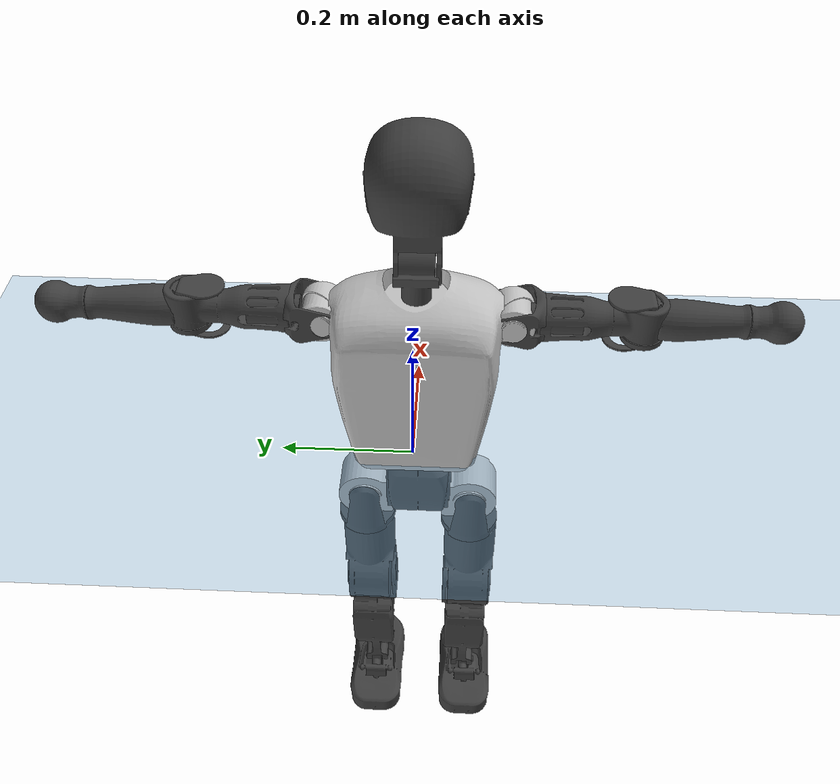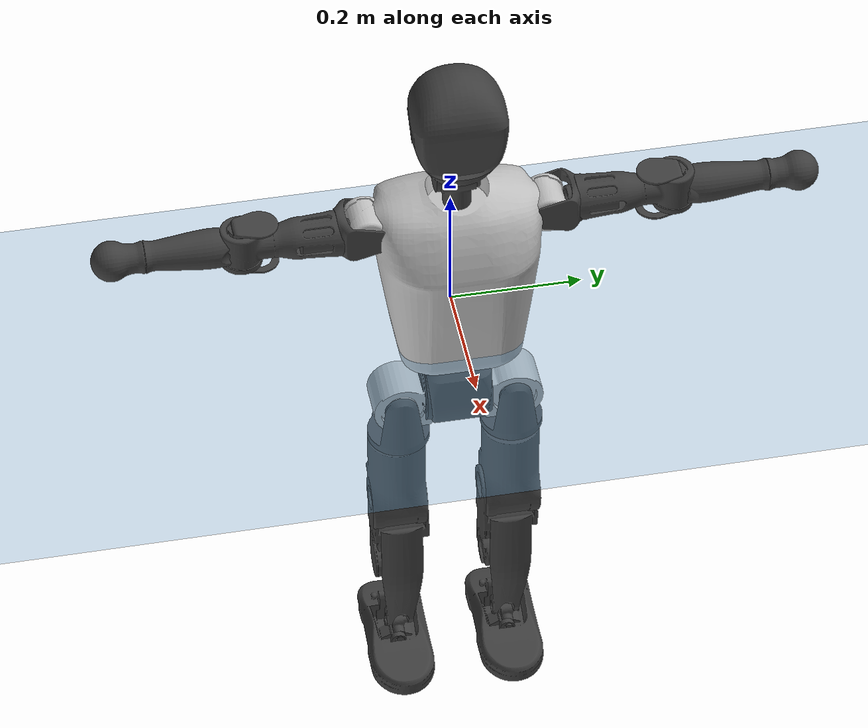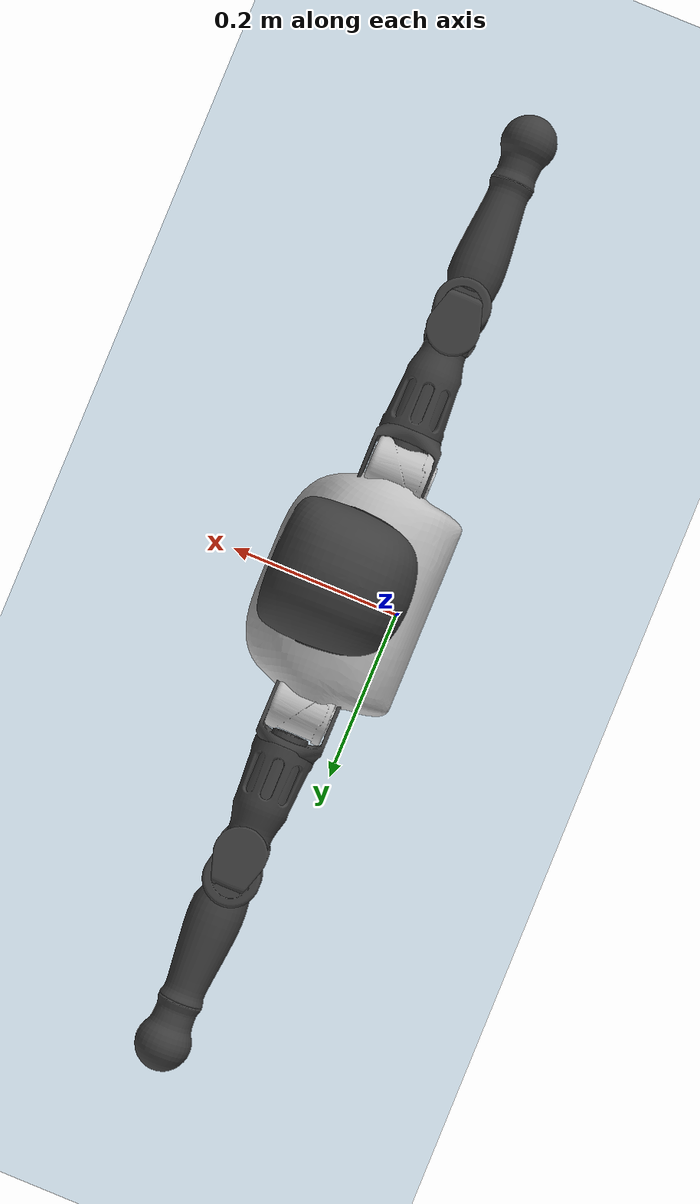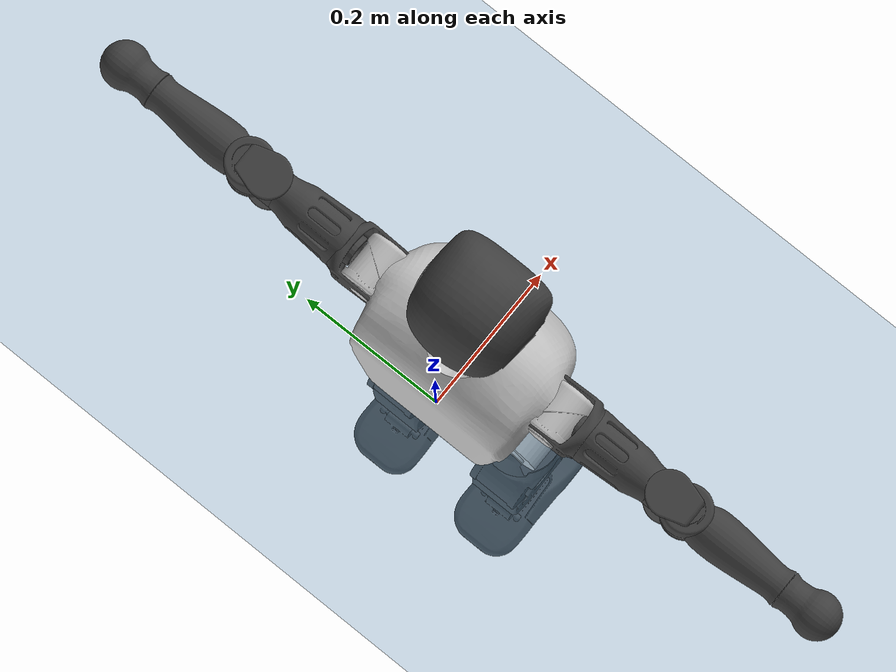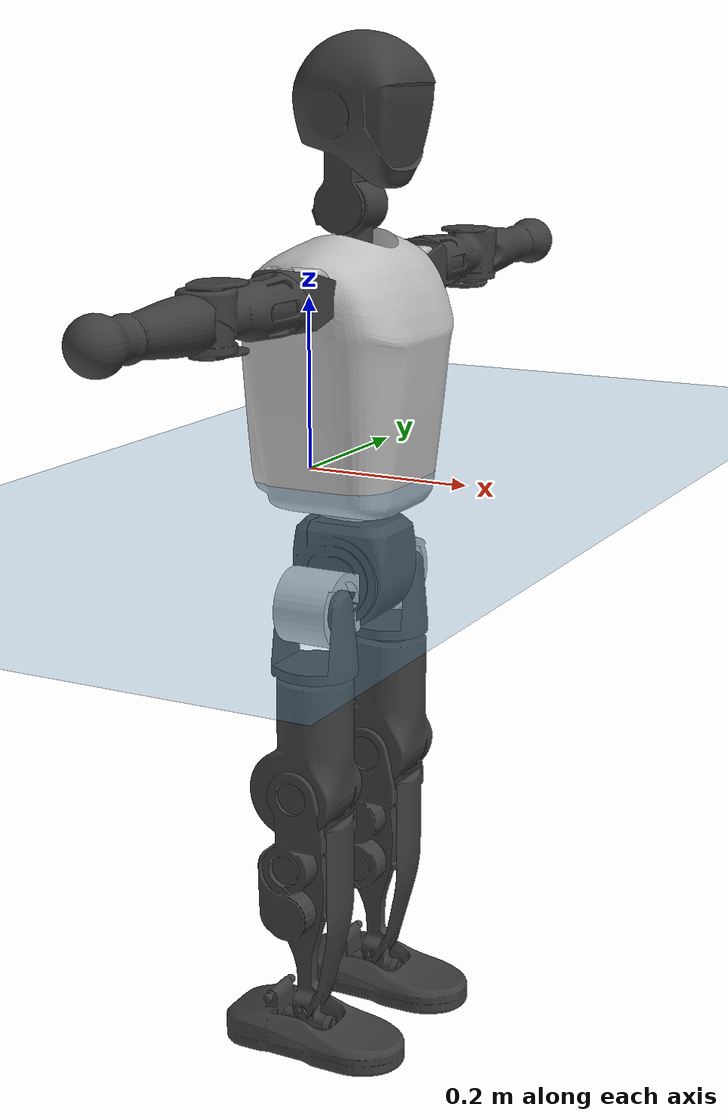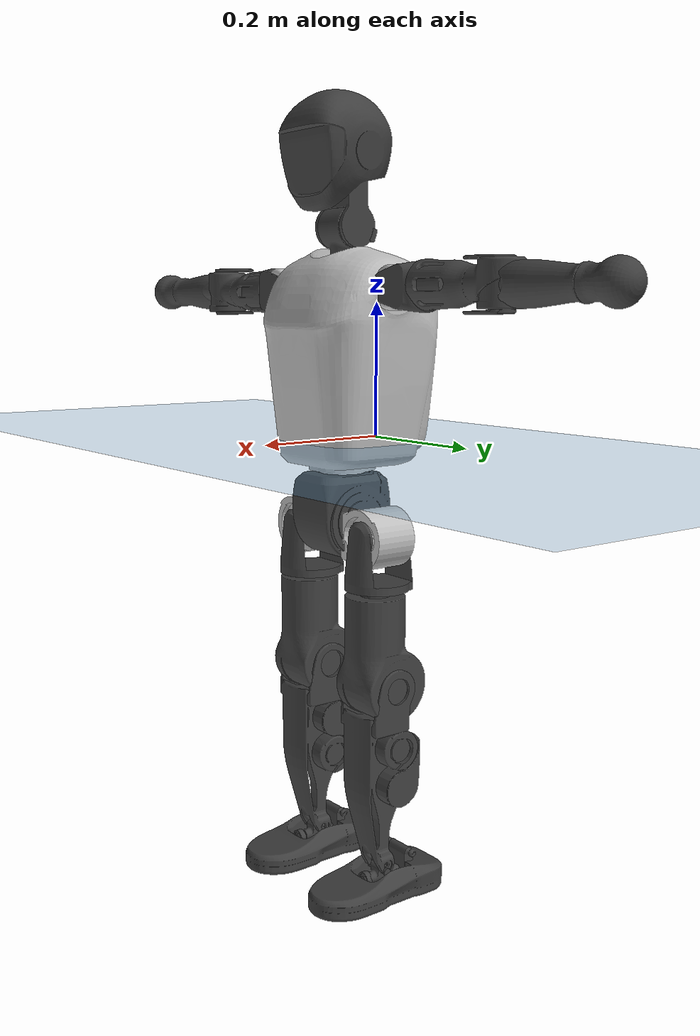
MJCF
<mujoco model="T1">
  <compiler angle="radian" assetdir="assets" balanceinertia="true" inertiafromgeom="false"/>

  <option timestep="0.005" density="1.2" viscosity="2e-05"/>

  <size nkey="1"/>

  <visual>
    <quality shadowsize="8192"/>
    <map shadowclip="0.5"/>
  </visual>

  <default>
    <default class="/">
      <joint armature="0.01" damping="0.01" frictionloss="0.1"/>
      <geom contype="0" conaffinity="0" group="1" solref="-1000 -80"/>
      <site size="0.01 0.005 0.005" group="5"/>
      <general forcelimited="true" biastype="affine" gainprm="25" biasprm="0 -25 -0.6"/>
      <default class="t1">
        <geom rgba="0.25 0.25 0.25 1"/>
        <default class="visual">
          <geom type="mesh" group="2"/>
        </default>
        <default class="collision">
          <geom group="3"/>
        </default>
        <default class="foot">
          <geom size="0.1115 0.05 0.015" type="box" condim="6" group="4" priority="1" solimp="0.015 1 0.015"/>
        </default>
        <default class="reward_collision_sphere">
          <geom group="5" rgba="1 0 0 1"/>
        </default>
      </default>
    </default>
  </default>

  <asset>
    <texture type="skybox" colorspace="auto" name="//unnamed_texture_0" builtin="gradient" rgb1="0.95 0.95 0.95" rgb2="0.95 0.95 0.95" width="100" height="600"/>
    <texture type="2d" colorspace="auto" name="texplane" builtin="checker" rgb1="0.345 0.575 0.748" rgb2="0.345 0.575 0.748" markrgb="1 1 1" width="512" height="512"/>
    <material name="MatPlane" class="/" texture="texplane" texuniform="true" texrepeat="2 2" specular="0.9"/>
    <mesh name="Trunk" class="/" file="Trunk.stl"/>
    <mesh name="H1" class="/" file="H1.stl"/>
    <mesh name="H2" class="/" file="H2.stl"/>
    <mesh name="AL1" class="/" file="AL1.stl"/>
    <mesh name="AL2" class="/" file="AL2.stl"/>
    <mesh name="AL3" class="/" file="AL3.stl"/>
    <mesh name="left_hand_link" class="/" file="left_hand_link.stl"/>
    <mesh name="AR1" class="/" file="AR1.stl"/>
    <mesh name="AR2" class="/" file="AR2.stl"/>
    <mesh name="AR3" class="/" file="AR3.stl"/>
    <mesh name="right_hand_link" class="/" file="right_hand_link.stl"/>
    <mesh name="Waist" class="/" file="Waist.stl"/>
    <mesh name="Hip_Pitch_Left" class="/" file="Hip_Pitch_Left.stl"/>
    <mesh name="Hip_Roll_Left" class="/" file="Hip_Roll_Left.stl"/>
    <mesh name="Hip_Yaw_Left" class="/" file="Hip_Yaw_Left.stl"/>
    <mesh name="Shank_Left" class="/" file="Shank_Left.stl"/>
    <mesh name="Ankle_Cross_Left" class="/" file="Ankle_Cross_Left.stl"/>
    <mesh name="left_foot_link" class="/" file="left_foot_link.stl"/>
    <mesh name="Hip_Pitch_Right" class="/" file="Hip_Pitch_Right.stl"/>
    <mesh name="Hip_Roll_Right" class="/" file="Hip_Roll_Right.stl"/>
    <mesh name="Hip_Yaw_Right" class="/" file="Hip_Yaw_Right.stl"/>
    <mesh name="Shank_Right" class="/" file="Shank_Right.stl"/>
    <mesh name="Ankle_Cross_Right" class="/" file="Ankle_Cross_Right.stl"/>
    <mesh name="right_foot_link" class="/" file="right_foot_link.stl"/>
  </asset>

  <worldbody>
    <geom name="floor" class="/" size="100 100 0.125" type="plane" group="0" material="MatPlane"/>
    <light name="toplight_shadow" class="/" pos="0 0 5" dir="0.0990148 0.0990148 -0.990148" type="directional" ambient="0.04 0.04 0.04" diffuse="0.55 0.55 0.55" specular="0.12 0.12 0.12"/>
    <light name="toplight_fill" class="/" pos="0 0 5" dir="0.0990148 0.0990148 -0.990148" type="directional" castshadow="false" ambient="0.04 0.04 0.04" diffuse="0.3 0.3 0.3" specular="0.08 0.08 0.08"/>
    <body name="trunk" childclass="t1" pos="0.000113864 -0.00201105 -0.000698432" quat="0.999999 -0.000637451 0.00121361 0.000282926">
      <inertial pos="0.0528721 -0.00173032 0.10654" quat="0.99992 -0.00767307 -0.00244818 -0.00975777" mass="9.59936" diaginertia="0.0886876 0.0278633 0.0620681"/>
      <joint name="//unnamed_joint_0" type="free" armature="0" damping="0" frictionloss="0"/>
      <geom name="//unnamed_geom_1" class="visual" rgba="0.76 0.76 0.76 1" mesh="Trunk"/>
      <geom name="//unnamed_geom_2" class="collision" size="0.0705119 0.0940158 0.141024" pos="0.0590371 0 0.122177" type="box"/>
      <geom name="//unnamed_geom_3" class="reward_collision_sphere" size="0.108118" pos="0.0590371 0 0.101814"/>
      <geom name="//unnamed_geom_4" class="reward_collision_sphere" size="0.0141024" pos="0.0590371 0.0695624 0"/>
      <geom name="//unnamed_geom_5" class="reward_collision_sphere" size="0.0141024" pos="0.0590371 -0.0695624 0"/>
      <geom name="//unnamed_geom_6" class="reward_collision_sphere" size="0.0141024" pos="0.0590371 0.0875668 0.183265"/>
      <geom name="//unnamed_geom_7" class="reward_collision_sphere" size="0.0141024" pos="0.0590371 -0.0875668 0.183265"/>
      <site name="imu" pos="0.013828 -0.000483274 -0.0137099" size="0.00940158"/>
      <camera name="track" pos="0 -1.63676 0" quat="0.707107 0.707107 0 0" mode="trackcom"/>
      <camera name="ego_camera" pos="0.120042 0 0.427619" quat="-0.5 -0.5 0.5 0.5"/>
      <body name="H1" pos="0.0579852 -0.000115893 0.245053" quat="1 -0.000152054 -4.55085e-06 8.94622e-06">
        <inertial pos="-0.00184653 -0.00057335 0.0584336" quat="0.765367 -0.0131291 0.000638639 0.64346" mass="0.364172" diaginertia="0.000216101 8.22713e-05 0.00016293"/>
        <joint name="AAHead_yaw" pos="0 0 0" axis="-0.00267322 0.00307015 0.999992" stiffness="0.00698687" range="-1.5128 1.56511" armature="0.010545" damping="0.00542491" frictionloss="0.106225"/>
        <geom name="//unnamed_geom_8" class="visual" mesh="H1"/>
        <body name="H2" pos="-0.0027032 -0.00186319 0.0630889" quat="1 0.000168949 0.000131264 0.000581769">
          <inertial pos="0.0096756 -0.00227661 0.0983561" quat="0.990339 0.0997426 -0.0638865 -0.0720957" mass="0.530921" diaginertia="0.0018384 0.000683356 0.00188037"/>
          <joint name="Head_pitch" pos="0 0 0" axis="0.0011673 -0.999999 -0.00118769" range="-1.23673 0.355412" armature="0.0105985" damping="0" frictionloss="0.0889586"/>
          <geom name="//unnamed_geom_9" class="visual" mesh="H2"/>
          <geom name="//unnamed_geom_10" class="collision" size="0.0752127" pos="0.00983952 0 0.111995"/>
          <geom name="//unnamed_geom_11" class="reward_collision_sphere" size="0.0846142" pos="0.019679 0 0.101814"/>
        </body>
      </body>
      <body name="AL1" pos="0.0569635 0.0865761 0.220647" quat="0.999999 0.000837852 0.000478387 -0.000843915">
        <inertial pos="-0.00373941 0.0358181 0.00055123" quat="0.504193 0.495765 -0.504314 0.495656" mass="0.429523" diaginertia="0.0012248 0.000449085 0.000301012"/>
        <joint name="Left_Shoulder_Pitch" pos="0 0 0" axis="0.0105313 0.999855 0.0133606" range="-3.34976 1.26759" armature="0.00959957" damping="0" frictionloss="0.103869"/>
        <geom name="//unnamed_geom_12" class="visual" rgba="0.76 0.76 0.76 1" mesh="AL1"/>
        <body name="AL2" pos="-0.00139929 0.0404236 0.000611881" quat="1 -1.14446e-05 0.000394789 -0.000312409">
          <inertial pos="0.00253667 0.0336386 -0.00219481" quat="0.485397 0.512748 -0.48581 0.515237" mass="0.13873" diaginertia="0.00038166 0.000129712 0.000193727"/>
          <joint name="Left_Shoulder_Roll" pos="0 0 0" axis="-0.999997 -0.00129887 0.00223345" range="-1.53502 1.73606" armature="0.0105677" damping="0.0049312" frictionloss="0.0932914"/>
          <geom name="//unnamed_geom_13" class="visual" mesh="AL2"/>
          <body name="AL3" pos="0.00157024 0.0492231 0.00223017" quat="1 -0.000182772 -2.6243e-05 7.01382e-05">
            <inertial pos="0.00229361 0.0674146 0.000436519" quat="0.70283 0.711284 -0.00651088 0.00787238" mass="0.792475" diaginertia="0.0118515 0.00453086 0.000632362"/>
            <joint name="Left_Elbow_Pitch" pos="0 0 0" axis="-0.00546806 -0.999954 0.00793178" range="-2.3178 2.24296" armature="0.0101717" damping="0.0153593" frictionloss="0.0939673"/>
            <geom name="//unnamed_geom_14" class="visual" mesh="AL3"/>
            <geom name="//unnamed_geom_15" class="collision" size="0.0282047 0.0705119" pos="0 0.0409191 0" quat="0.707105 0.707108 0 0" type="cylinder"/>
            <geom name="//unnamed_geom_16" class="reward_collision_sphere" size="0.0338457"/>
            <body name="left_hand_link" pos="0.000904652 0.119736 -0.00194918" quat="0.999999 0.000459736 0.00103759 -1.66021e-05">
              <inertial pos="-0.00231668 0.0913083 0.000364418" quat="0.707686 0.706526 0.00105287 0.000706256" mass="0.271047" diaginertia="0.00730036 0.00304701 0.000243876"/>
              <joint name="Left_Elbow_Yaw" pos="0 0 0" axis="-0.000827828 -0.00427043 0.999991" range="-2.44011 -0.0380727" armature="0.00990572" damping="0.020439" frictionloss="0.0958839"/>
              <geom name="//unnamed_geom_17" class="visual" mesh="left_hand_link"/>
              <geom name="//unnamed_geom_18" class="collision" size="0.0282047 0.0822638" pos="0 0.10639 0" quat="0.707105 0.707108 0 0" type="cylinder"/>
              <geom name="//unnamed_geom_19" class="reward_collision_sphere" size="0.0470079"/>
              <geom name="//unnamed_geom_20" class="reward_collision_sphere" size="0.0329055" pos="0 0.090022 0"/>
              <geom name="//unnamed_geom_21" class="reward_collision_sphere" size="0.0329055" pos="0 0.175952 0"/>
            </body>
          </body>
        </body>
      </body>
      <body name="AR1" pos="0.0572082 -0.088644 0.221464" quat="1 -5.37578e-05 0.000477941 -0.000468004">
        <inertial pos="-0.00323793 -0.0387184 0.000306604" quat="0.5047 0.487268 -0.503086 0.504729" mass="0.427372" diaginertia="0.00118893 0.000461217 0.000314033"/>
        <joint name="Right_Shoulder_Pitch" pos="0 0 0" axis="0.0165055 -0.999863 -0.00144817" range="-1.21709 3.2677" armature="0.0106725" damping="0.00487871" frictionloss="0.085462"/>
        <geom name="//unnamed_geom_22" class="visual" rgba="0.76 0.76 0.76 1" mesh="AR1"/>
        <body name="AR2" pos="0.00179403 -0.0346417 -0.00235759" quat="0.999999 -0.00108615 -0.000840329 0.000276137">
          <inertial pos="0.00134539 -0.0317894 0.000288315" quat="0.51667 0.486646 -0.513574 0.482151" mass="0.128533" diaginertia="0.00036879 0.000130732 0.000194103"/>
          <joint name="Right_Shoulder_Roll" pos="0 0 0" axis="-0.99998 0.00194683 -0.00596105" stiffness="0.00223089" range="-1.71862 1.58767" armature="0.00948907" damping="0.0121499" frictionloss="0.102307"/>
          <geom name="//unnamed_geom_23" class="visual" mesh="AR2"/>
          <body name="AR3" pos="0.00217121 -0.0491505 -0.00163783" quat="1 -6.68288e-06 -4.73583e-06 9.53838e-06">
            <inertial pos="-0.000875864 -0.0725223 -0.00109314" quat="0.701556 0.712537 0.0102851 -0.00186231" mass="0.852253" diaginertia="0.0118959 0.00473558 0.000705017"/>
            <joint name="Right_Elbow_Pitch" pos="0 0 0" axis="-0.0118486 0.999916 0.00530549" stiffness="0.00278954" range="-2.32344 2.22157" armature="0.00807713" damping="0.00522838" frictionloss="0.106305"/>
            <geom name="//unnamed_geom_24" class="visual" mesh="AR3"/>
            <geom name="//unnamed_geom_25" class="collision" size="0.0282047 0.0705119" pos="0 -0.0409191 0" quat="0.707105 0.707108 0 0" type="cylinder"/>
            <geom name="//unnamed_geom_26" class="reward_collision_sphere" size="0.0338457"/>
            <body name="right_hand_link" pos="-0.000139711 -0.120205 0.000721002" quat="0.999999 -0.000445746 0.000459212 0.00119715">
              <inertial pos="-0.00115362 -0.0915095 0.00340916" quat="0.706496 0.707716 0.000216954 0.000321329" mass="0.26873" diaginertia="0.00743968 0.00288942 0.000229264"/>
              <joint name="Right_Elbow_Yaw" pos="0 0 0" axis="-0.00253448 0.00882574 0.999958" range="0.0080462 2.4929" armature="0.0107949" damping="0" frictionloss="0.107116"/>
              <geom name="//unnamed_geom_27" class="visual" mesh="right_hand_link"/>
              <geom name="//unnamed_geom_28" class="collision" size="0.0282047 0.0822638" pos="0 -0.10639 0" quat="0.707105 0.707108 0 0" type="cylinder"/>
              <geom name="//unnamed_geom_29" class="reward_collision_sphere" size="0.0470079"/>
              <geom name="//unnamed_geom_30" class="reward_collision_sphere" size="0.0329055" pos="0 -0.090022 0"/>
              <geom name="//unnamed_geom_31" class="reward_collision_sphere" size="0.0329055" pos="0 -0.175952 0"/>
            </body>
          </body>
        </body>
      </body>
      <body name="Waist" pos="0.0619213 -0.00424013 -0.11523" quat="1 -2.49422e-05 -0.00023573 -0.000597663">
        <inertial pos="-5.15969e-05 -0.000349143 0.00653481" quat="0.98168 0.0027114 -0.190199 0.011023" mass="2.09626" diaginertia="0.00477383 0.00192053 0.00505059"/>
        <joint name="Waist" pos="0 0 0" axis="0.00582142 0.0111231 0.999921" range="-1.5875 1.51713" armature="0.00934903" damping="0.0208843" frictionloss="0.106834"/>
        <geom name="//unnamed_geom_32" class="visual" mesh="Waist"/>
        <body name="Hip_Pitch_Left" pos="0.000334059 0.0872922 0.000175636" quat="1 -0.000163222 -0.000659005 -0.000149509">
          <inertial pos="0.00119784 -0.00844129 -0.0180064" quat="0.975465 0.219768 0.0130348 0.000412258" mass="0.858811" diaginertia="0.00165652 0.000547193 0.00138467"/>
          <joint name="Left_Hip_Pitch" pos="0 0 0" axis="-0.00911414 0.999947 0.00482715" range="-1.80159 1.61574" armature="0.0103292" damping="0" frictionloss="0.0934959"/>
          <geom name="//unnamed_geom_33" class="visual" rgba="0.76 0.76 0.76 1" mesh="Hip_Pitch_Left"/>
          <body name="Hip_Roll_Left" pos="0.000353723 0.00121214 -0.0184161" quat="0.999999 -0.00110639 -4.50467e-05 -0.000179314">
            <inertial pos="-0.00174953 0.000391507 -0.0553794" quat="0.70736 -0.00506662 -0.00383332 0.706825" mass="0.314045" diaginertia="0.00161632 0.000540153 0.000547515"/>
            <joint name="Left_Hip_Roll" pos="0 0 0" axis="-0.999959 0.00217972 -0.00874833" stiffness="0.00794142" range="-1.53967 0.191389" armature="0.00849565" damping="0.0167173" frictionloss="0.0976622"/>
            <geom name="//unnamed_geom_34" class="visual" mesh="Hip_Roll_Left"/>
            <geom name="//unnamed_geom_35" class="reward_collision_sphere" size="0.0517087"/>
            <body name="Hip_Yaw_Left" pos="0.00253577 -0.00120326 -0.0860548" quat="1 9.29242e-05 -0.000310182 0.000385039">
              <inertial pos="-0.007495 -0.000833671 -0.0905708" quat="0.703635 -0.0277758 -0.0280433 0.709464" mass="1.71105" diaginertia="0.0237816 0.00910579 0.00274883"/>
              <joint name="Left_Hip_Yaw" pos="0 0 0" axis="0.00061063 0.0010498 -0.999999" range="-1.06706 1.01181" armature="0.0094089" damping="0.0173889" frictionloss="0.0897233"/>
              <geom name="//unnamed_geom_36" class="visual" mesh="Hip_Yaw_Left"/>
              <geom name="//unnamed_geom_37" class="collision" size="0.0470079 0.0752127" type="cylinder"/>
              <body name="Shank_Left" pos="-0.013265 -0.0027347 -0.138964" quat="1 -0.000222298 5.96893e-05 -0.000261455">
                <inertial pos="-0.00679818 -0.00213185 -0.125683" quat="0.997558 -0.00402886 -0.0115312 0.0687641" mass="1.52347" diaginertia="0.0330461 0.0130176 0.00202942"/>
                <joint name="Left_Knee_Pitch" pos="0 0 0" axis="-0.00107586 0.999999 -0.00070591" range="0.0127127 2.29802" armature="0.0106127" damping="0" frictionloss="0.0955408"/>
                <geom name="//unnamed_geom_38" class="visual" mesh="Shank_Left"/>
                <geom name="//unnamed_geom_39" class="collision" size="0.0470079 0.0705119" pos="0 0 -0.122177" type="cylinder"/>
                <geom name="//unnamed_geom_40" class="reward_collision_sphere" size="0.0611103"/>
                <body name="Ankle_Cross_Left" pos="0.00208182 0.00238594 -0.288435" quat="0.999999 3.5972e-05 8.98294e-05 0.00130735">
                  <inertial pos="-0.00534495 -0.00174157 -0.00711859" quat="0.442121 0.54022 0.557911 0.448805" mass="0.060635" diaginertia="2.66047e-05 9.75124e-06 1.28446e-05"/>
                  <joint name="Left_Ankle_Pitch" pos="0 0 0" axis="0.011888 0.999926 -0.00259934" range="-0.885243 0.356482" armature="0.00898542" damping="0.0101687" frictionloss="0.0898412"/>
                  <geom name="//unnamed_geom_41" class="visual" mesh="Ankle_Cross_Left"/>
                  <body name="left_foot_link" pos="-0.00282099 -0.00257174 -0.0130449" quat="1 0.000277637 0.000206455 -0.00019563">
                    <inertial pos="0.00233036 0.00106498 -0.00734837" quat="-0.000534063 0.620613 0.00118679 0.784116" mass="0.56517" diaginertia="0.00251754 0.000869164 0.00237081"/>
                    <joint name="Left_Ankle_Roll" pos="0 0 0" axis="-0.999984 0.004281 0.00369249" stiffness="0.00620593" range="-0.452758 0.445562" armature="0.00802455" damping="0" frictionloss="0.0916033"/>
                    <geom name="//unnamed_geom_42" class="visual" mesh="left_foot_link"/>
                    <geom name="left_foot" class="foot" size="0.0869945 0.0441742 0.0142165" pos="0.00983952 0 -0.0152721"/>
                    <geom name="//unnamed_geom_44" class="reward_collision_sphere" size="0.0488882" pos="0.00983952 0 -0.0152721"/>
                    <geom name="//unnamed_geom_45" class="reward_collision_sphere" size="0.0282047" pos="0.0934755 -0.0188228 -0.0152721"/>
                    <geom name="//unnamed_geom_46" class="reward_collision_sphere" size="0.0282047" pos="-0.0688767 -0.0188228 -0.0152721"/>
                    <site name="left_foot" class="foot" pos="0.00983952 0 -0.0152721" size="0.00940158"/>
                  </body>
                </body>
              </body>
            </body>
          </body>
        </body>
        <body name="Hip_Pitch_Right" pos="-0.00315105 -0.0839941 -0.00212806" quat="0.999999 0.000338282 0.000381335 0.000908453">
          <inertial pos="0.00137536 0.00462739 -0.0183095" quat="0.973363 -0.228301 0.0199317 0.00679839" mass="0.848573" diaginertia="0.00161269 0.000517773 0.00131463"/>
          <joint name="Right_Hip_Pitch" pos="0 0 0" axis="-0.00748678 -0.999965 -0.00383825" range="-1.62833 1.7964" armature="0.00852576" damping="0.00638594" frictionloss="0.104466"/>
          <geom name="//unnamed_geom_47" class="visual" rgba="0.76 0.76 0.76 1" mesh="Hip_Pitch_Right"/>
          <body name="Hip_Roll_Right" pos="-0.00098667 -0.00183649 -0.0215221" quat="1 0.000256748 -0.000339666 -0.000256648">
            <inertial pos="-0.00136917 0.00195475 -0.0568498" quat="0.707357 0.00197008 -0.00608474 0.706828" mass="0.330792" diaginertia="0.00167684 0.000563841 0.000568675"/>
            <joint name="Right_Hip_Roll" pos="0 0 0" axis="-0.999994 0.00146814 0.00300493" range="-0.186691 1.57091" armature="0.0101358" damping="0.00392268" frictionloss="0.0890266"/>
            <geom name="//unnamed_geom_48" class="visual" mesh="Hip_Roll_Right"/>
            <geom name="//unnamed_geom_49" class="reward_collision_sphere" size="0.0517087"/>
            <body name="Hip_Yaw_Right" pos="-0.000279919 -0.00330637 -0.083071" quat="1 0.000174251 -0.000257049 -7.72045e-05">
              <inertial pos="-0.00438913 -0.00257142 -0.0912515" quat="0.714048 -0.0310559 -0.0342838 0.698567" mass="1.81581" diaginertia="0.0247602 0.0092947 0.00285272"/>
              <joint name="Right_Hip_Yaw" pos="0 0 0" axis="0.000199611 0.00033134 -1" range="-0.991362 0.944856" armature="0.00862948" damping="0.0221714" frictionloss="0.10552"/>
              <geom name="//unnamed_geom_50" class="visual" mesh="Hip_Yaw_Right"/>
              <geom name="//unnamed_geom_51" class="collision" size="0.0470079 0.0752127" type="cylinder"/>
              <body name="Shank_Right" pos="-0.0109456 0.00195823 -0.13625" quat="0.999999 0.0005976 -0.000658029 -0.000933838">
                <inertial pos="-0.00567322 0.00293648 -0.122704" quat="0.99875 -0.0060284 -0.0355637 -0.0345947" mass="1.43638" diaginertia="0.0314876 0.0129718 0.00219917"/>
                <joint name="Right_Knee_Pitch" pos="0 0 0" axis="-0.000985681 -0.999979 -0.00644051" range="-2.28272 -0.0631588" armature="0.00986474" damping="0.0201275" frictionloss="0.0892098"/>
                <geom name="//unnamed_geom_52" class="visual" mesh="Shank_Right"/>
                <geom name="//unnamed_geom_53" class="collision" size="0.0470079 0.0705119" pos="0 0 -0.122177" type="cylinder"/>
                <geom name="//unnamed_geom_54" class="reward_collision_sphere" size="0.0611103"/>
                <body name="Ankle_Cross_Right" pos="0.00307975 -0.00324016 -0.285076" quat="1 0.000605867 0.000582847 -5.34793e-05">
                  <inertial pos="-0.00462702 -0.000305337 -0.00539619" quat="0.449508 0.545158 0.555607 0.438231" mass="0.0604853" diaginertia="2.67618e-05 9.44699e-06 1.19969e-05"/>
                  <joint name="Right_Ankle_Pitch" pos="0 0 0" axis="-0.00105648 -0.999999 -0.000413707" range="-0.405655 0.856091" armature="0.00909479" damping="0.00646247" frictionloss="0.098975"/>
                  <geom name="//unnamed_geom_55" class="visual" mesh="Ankle_Cross_Right"/>
                  <body name="right_foot_link" pos="0.000313579 -0.00314413 -0.0138426" quat="1 0.000119856 0.000102799 -7.81523e-05">
                    <inertial pos="0.000746995 0.000504715 -0.0120703" quat="0.0010098 0.621284 0.000580953 0.783585" mass="0.565816" diaginertia="0.00246576 0.000880677 0.00231612"/>
                    <joint name="Right_Ankle_Roll" pos="0 0 0" axis="-0.999938 0.009358 -0.00599546" range="-0.406195 0.429323" armature="0.0107346" damping="0.0101917" frictionloss="0.0810159"/>
                    <geom name="//unnamed_geom_56" class="visual" mesh="right_foot_link"/>
                    <geom name="right_foot" class="foot" size="0.0719403 0.0425673 0.0137082" pos="0.00983952 0 -0.0152721"/>
                    <geom name="//unnamed_geom_58" class="reward_collision_sphere" size="0.0376063"/>
                    <geom name="//unnamed_geom_59" class="reward_collision_sphere" size="0.0282047" pos="0.00983952 0 -0.0152721"/>
                    <geom name="//unnamed_geom_60" class="reward_collision_sphere" size="0.0282047" pos="0.0934755 0.0188228 -0.0152721"/>
                    <geom name="//unnamed_geom_61" class="reward_collision_sphere" size="0.0282047" pos="-0.0688767 0.0188228 -0.0152721"/>
                    <site name="right_foot" class="foot" pos="0.00983952 0 -0.0152721" size="0.00940158"/>
                  </body>
                </body>
              </body>
            </body>
          </body>
        </body>
      </body>
    </body>
  </worldbody>

  <contact>
    <pair class="/" geom1="floor" geom2="left_foot" name="//unnamed_contact_0"/>
    <pair class="/" geom1="floor" geom2="right_foot" name="//unnamed_contact_1"/>
  </contact>

  <actuator>
    <general name="AAHead_yaw" class="/" joint="AAHead_yaw" forcerange="-6.01014 6.01014" gainprm="23.0953" biasprm="0 -23.0953 -0.540321"/>
    <general name="Head_pitch" class="/" joint="Head_pitch" forcerange="-7.25305 7.25305" gainprm="23.0953" biasprm="0 -23.0953 -0.540321"/>
    <general name="Left_Shoulder_Pitch" class="/" joint="Left_Shoulder_Pitch" forcerange="-17.4942 17.4942" gainprm="23.0953" biasprm="0 -23.0953 -0.540321"/>
    <general name="Left_Shoulder_Roll" class="/" joint="Left_Shoulder_Roll" forcerange="-18.5723 18.5723" gainprm="23.0953" biasprm="0 -23.0953 -0.540321"/>
    <general name="Left_Elbow_Pitch" class="/" joint="Left_Elbow_Pitch" forcerange="-17.4851 17.4851" gainprm="23.0953" biasprm="0 -23.0953 -0.540321"/>
    <general name="Left_Elbow_Yaw" class="/" joint="Left_Elbow_Yaw" forcerange="-17.1905 17.1905" gainprm="23.0953" biasprm="0 -23.0953 -0.540321"/>
    <general name="Right_Shoulder_Pitch" class="/" joint="Right_Shoulder_Pitch" forcerange="-17.0812 17.0812" gainprm="23.0953" biasprm="0 -23.0953 -0.540321"/>
    <general name="Right_Shoulder_Roll" class="/" joint="Right_Shoulder_Roll" forcerange="-16.4991 16.4991" gainprm="23.0953" biasprm="0 -23.0953 -0.540321"/>
    <general name="Right_Elbow_Pitch" class="/" joint="Right_Elbow_Pitch" forcerange="-16.7298 16.7298" gainprm="23.0953" biasprm="0 -23.0953 -0.540321"/>
    <general name="Right_Elbow_Yaw" class="/" joint="Right_Elbow_Yaw" forcerange="-17.1309 17.1309" gainprm="23.0953" biasprm="0 -23.0953 -0.540321"/>
    <general name="Waist" class="/" joint="Waist" forcerange="-25.5848 25.5848" gainprm="23.0953" biasprm="0 -23.0953 -0.540321"/>
    <general name="Left_Hip_Pitch" class="/" joint="Left_Hip_Pitch" forcerange="-41.4695 41.4695" gainprm="23.0953" biasprm="0 -23.0953 -0.540321"/>
    <general name="Left_Hip_Roll" class="/" joint="Left_Hip_Roll" forcerange="-27.9749 27.9749" gainprm="23.0953" biasprm="0 -23.0953 -0.540321"/>
    <general name="Left_Hip_Yaw" class="/" joint="Left_Hip_Yaw" forcerange="-28.9626 28.9626" gainprm="23.0953" biasprm="0 -23.0953 -0.540321"/>
    <general name="Left_Knee_Pitch" class="/" joint="Left_Knee_Pitch" forcerange="-50.2547 50.2547" gainprm="23.0953" biasprm="0 -23.0953 -0.540321"/>
    <general name="Left_Ankle_Pitch" class="/" joint="Left_Ankle_Pitch" forcerange="-20.2402 20.2402" gainprm="23.0953" biasprm="0 -23.0953 -0.540321"/>
    <general name="Left_Ankle_Roll" class="/" joint="Left_Ankle_Roll" forcerange="-13.2369 13.2369" gainprm="23.0953" biasprm="0 -23.0953 -0.540321"/>
    <general name="Right_Hip_Pitch" class="/" joint="Right_Hip_Pitch" forcerange="-41.7054 41.7054" gainprm="23.0953" biasprm="0 -23.0953 -0.540321"/>
    <general name="Right_Hip_Roll" class="/" joint="Right_Hip_Roll" forcerange="-25.2141 25.2141" gainprm="23.0953" biasprm="0 -23.0953 -0.540321"/>
    <general name="Right_Hip_Yaw" class="/" joint="Right_Hip_Yaw" forcerange="-30.8072 30.8072" gainprm="23.0953" biasprm="0 -23.0953 -0.540321"/>
    <general name="Right_Knee_Pitch" class="/" joint="Right_Knee_Pitch" forcerange="-56.359 56.359" gainprm="23.0953" biasprm="0 -23.0953 -0.540321"/>
    <general name="Right_Ankle_Pitch" class="/" joint="Right_Ankle_Pitch" forcerange="-18.858 18.858" gainprm="23.0953" biasprm="0 -23.0953 -0.540321"/>
    <general name="Right_Ankle_Roll" class="/" joint="Right_Ankle_Roll" forcerange="-13.9017 13.9017" gainprm="23.0953" biasprm="0 -23.0953 -0.540321"/>
  </actuator>

  <sensor>
    <gyro site="imu" name="imu_angular_velocity"/>
    <velocimeter site="imu" name="imu_linear_velocity"/>
    <framelinvel objtype="site" objname="left_foot" name="left_foot_global_linear_velocity"/>
    <framelinvel objtype="site" objname="right_foot" name="right_foot_global_linear_velocity"/>
  </sensor>

  <keyframe>
    <key name="home" qpos="0 0 0.6385 1 0 0 0 0 0 0 1.4 0 -0.4 0 -1.4 0 0.4 0 -0.4 0 0 0.8 -0.4 0 0.4 0 0 -0.8 0.4 0"/>
  </keyframe>
</mujoco>
